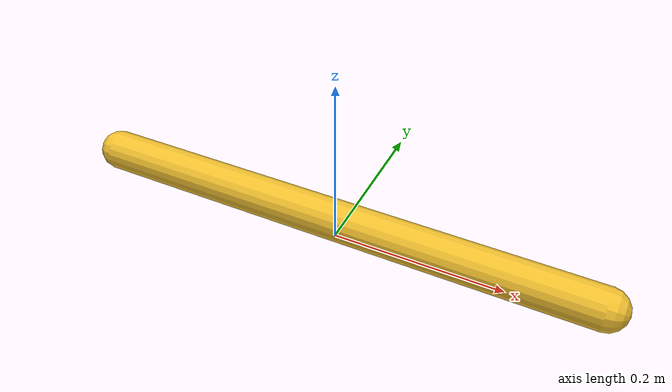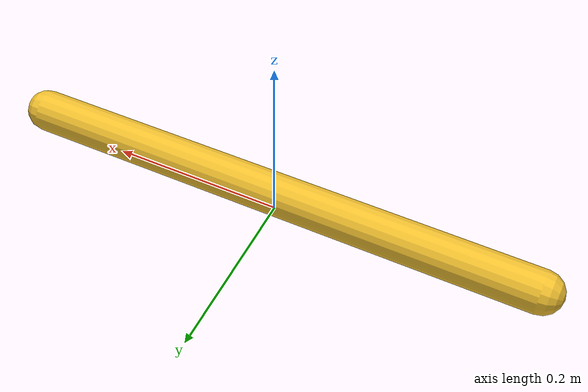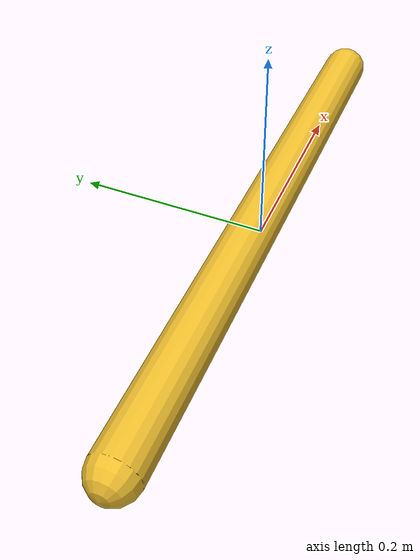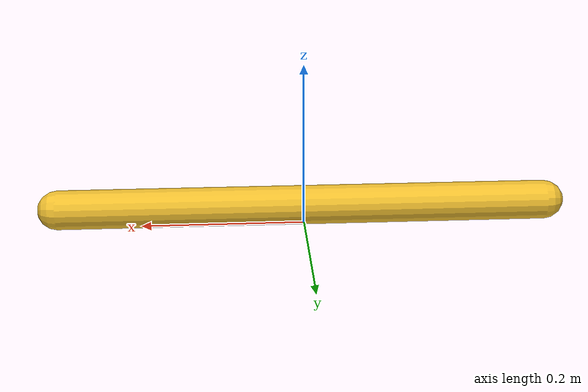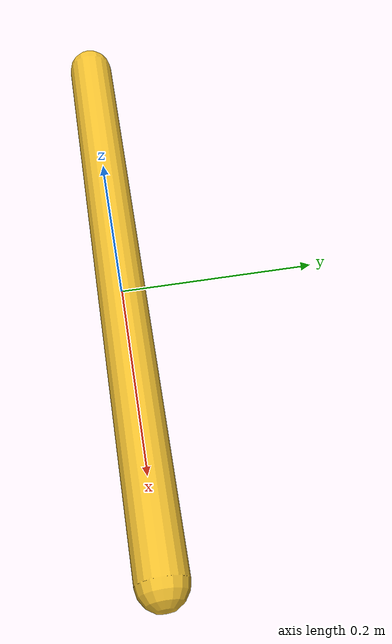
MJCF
<mujoco model="stick_prim_yellow_24">
  <compiler angle="radian"/>
  <asset>
  </asset>
  <worldbody>
    <body name="stick_prim_yellow_24">
      <freejoint/>
      <geom name="stick_prim_yellow_24_g0" type="capsule" size="0.024" fromto="-0.301 0 0.024 0.301 0 0.024" rgba="0.93 0.74 0.18 1" mass="0.05" friction="0.05 0.05 0.005" condim="4"/>
    </body>
  </worldbody>
</mujoco>
